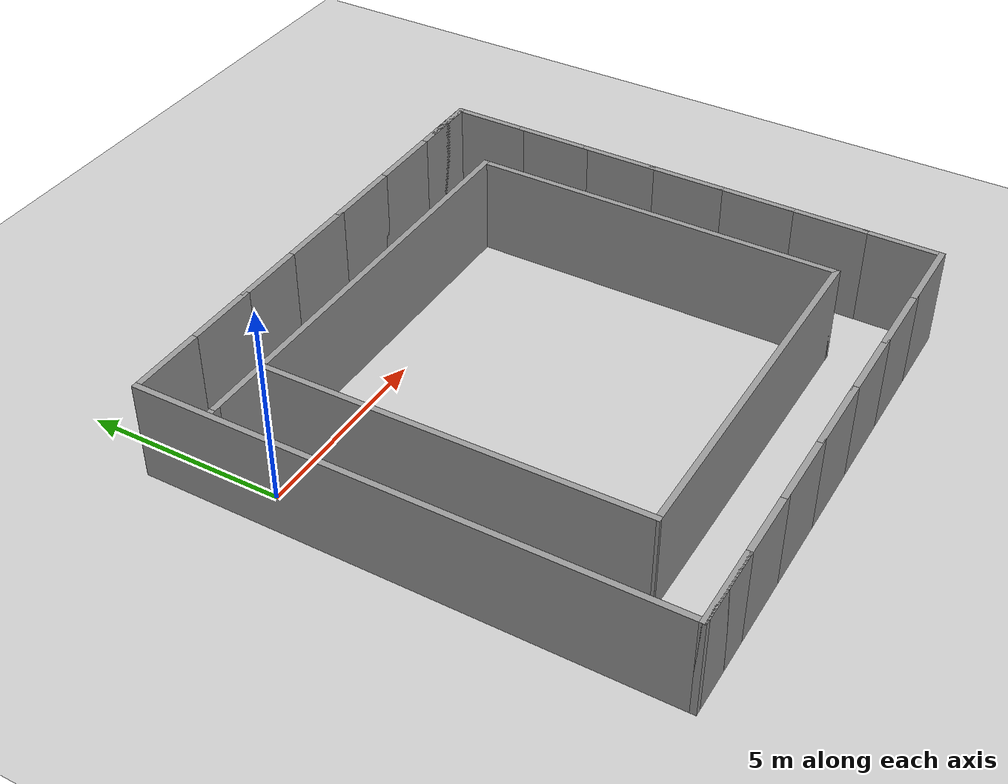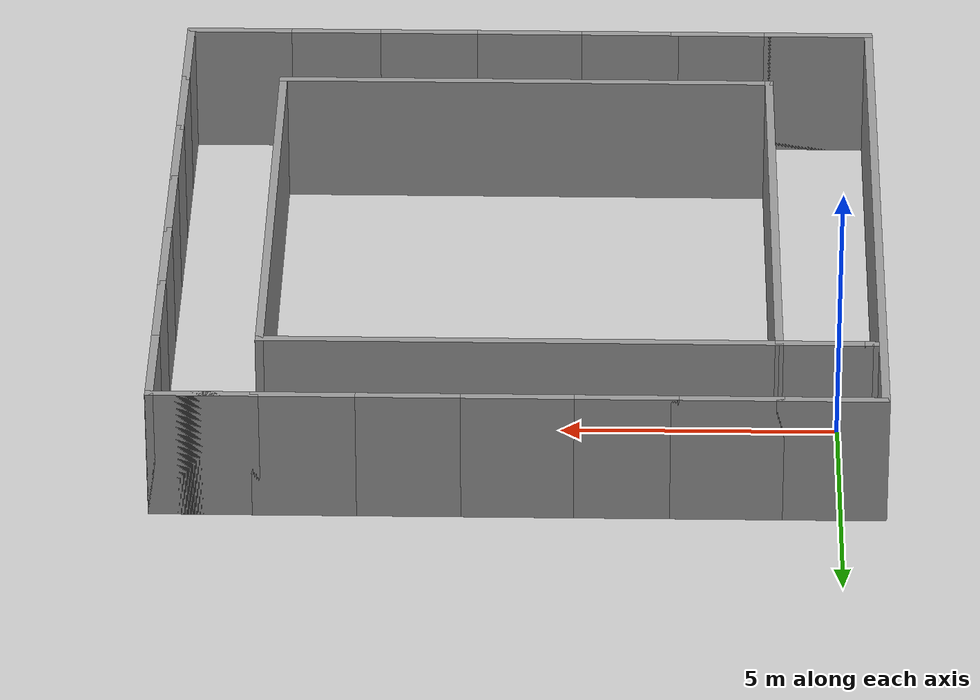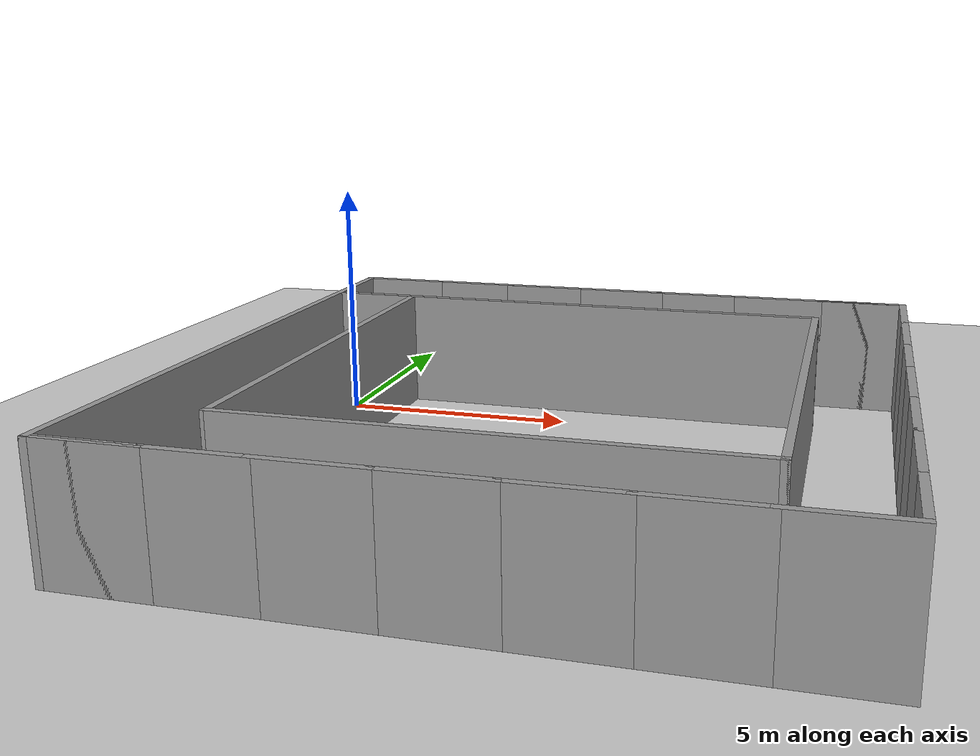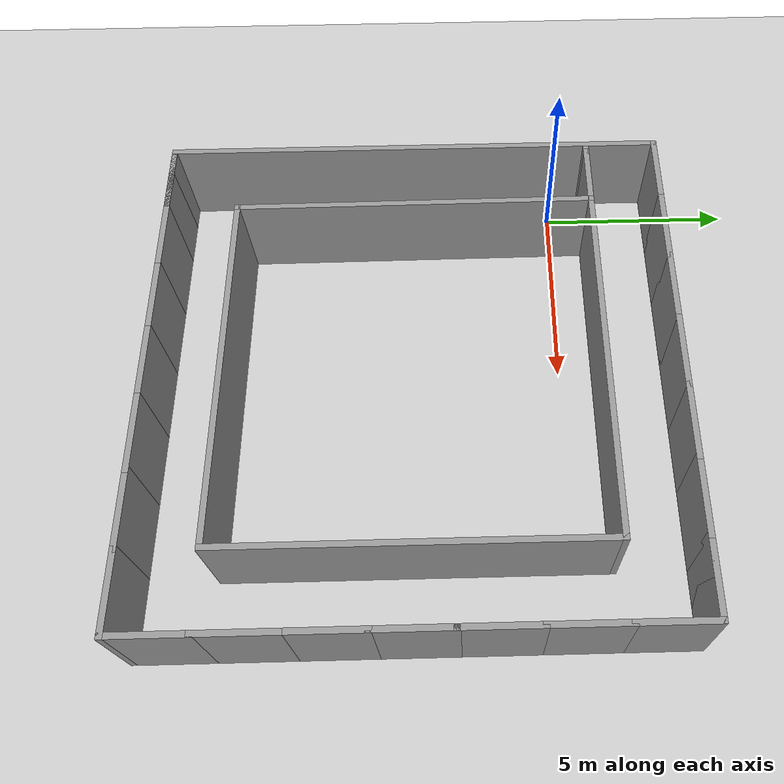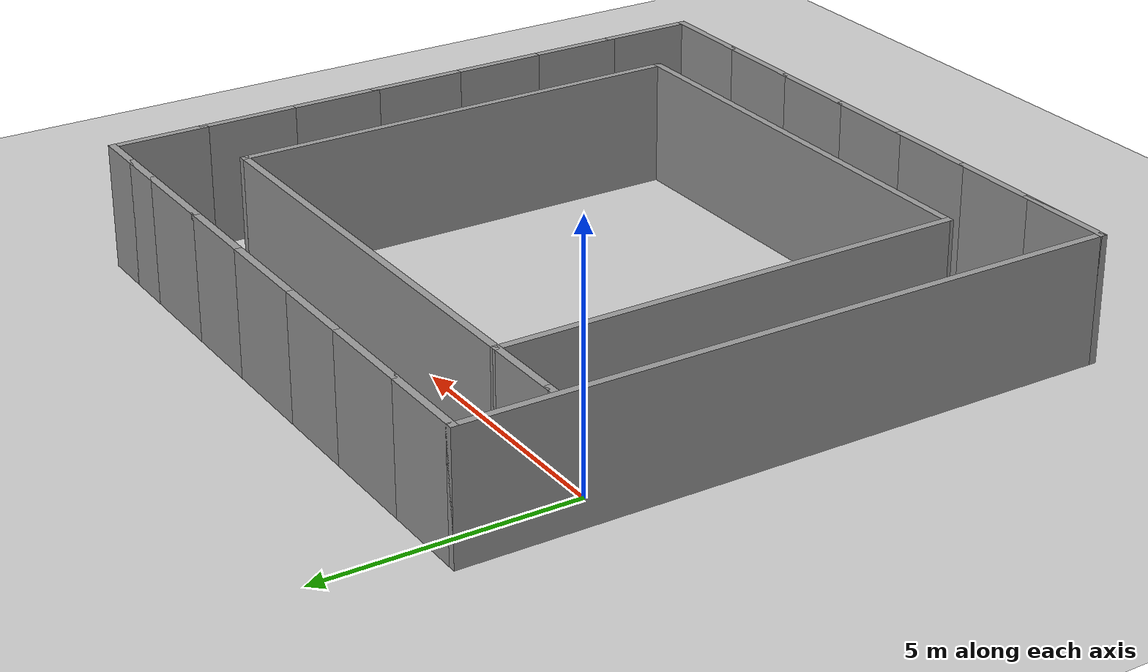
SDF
<sdf version="1.6">
 <world name="default">
  <light name="sun" type="directional">
   <pose>0 0 10 0 -0 0</pose>
   <diffuse>0.8 0.8 0.8 1</diffuse>
   <specular>0.1 0.1 0.1 1</specular>
   <attenuation>
    <range>1000</range>
    <constant>0.9</constant>
    <linear>0.01</linear>
    <quadratic>0.001</quadratic>
   </attenuation>
   <direction>-0.5 0.5 -1</direction>
  </light>
  <model name="ground_plane">
   <static>1</static>
   <link name="link">
    <collision name="collision">
     <geometry><plane><normal>0 0 1</normal><size>100 100</size></plane></geometry>
     <surface><friction><ode><mu>100</mu><mu2>50</mu2></ode></friction></surface>
    </collision>
    <visual name="visual">
     <cast_shadows>0</cast_shadows>
     <geometry><plane><normal>0 0 1</normal><size>100 100</size></plane></geometry>
     <material>
      <script><uri>file://media/materials/scripts/gazebo.material</uri><name>Gazebo/Grey</name></script>
     </material>
    </visual>
   </link>
  </model>
  <gravity>0 0 -9.8</gravity>
  <magnetic_field>6e-06 2.3e-05 -4.2e-05</magnetic_field>
  <atmosphere type="adiabatic"/>
  <physics name="default_physics" default="0" type="ode">
   <max_step_size>0.001</max_step_size>
   <real_time_factor>1</real_time_factor>
   <real_time_update_rate>1000</real_time_update_rate>
  </physics>
  <scene><ambient>0.4 0.4 0.4 1</ambient><background>0.7 0.7 0.7 1</background><shadows>1</shadows></scene>
  <spherical_coordinates>
   <surface_model>EARTH_WGS84</surface_model>
   <latitude_deg>0</latitude_deg>
   <longitude_deg>0</longitude_deg>
   <elevation>0</elevation>
   <heading_deg>0</heading_deg>
  </spherical_coordinates>
  <model name="sq_wall2">
   <pose>5.73319 -3.68571 0 0 -0 0</pose>
   <link name="Wall_0">
    <collision name="Wall_0_Collision">
     <geometry><box><size>2 0.15 2.5</size></box></geometry>
     <pose>0 0 1.25 0 -0 0</pose>
    </collision>
    <visual name="Wall_0_Visual">
     <pose>0 0 1.25 0 -0 0</pose>
     <geometry><box><size>2 0.15 2.5</size></box></geometry>
     <material>
      <script><uri>file://media/materials/scripts/gazebo.material</uri><name>Gazebo/Grey</name></script>
      <ambient>1 1 1 1</ambient>
     </material>
    </visual>
    <pose>-5.55 6.475 0 0 -0 0</pose>
   </link>
   <link name="Wall_1">
    <collision name="Wall_1_Collision">
     <geometry><box><size>2 0.15 2.5</size></box></geometry>
     <pose>0 0 1.25 0 -0 0</pose>
    </collision>
    <visual name="Wall_1_Visual">
     <pose>0 0 1.25 0 -0 0</pose>
     <geometry><box><size>2 0.15 2.5</size></box></geometry>
     <material>
      <script><uri>file://media/materials/scripts/gazebo.material</uri><name>Gazebo/Grey</name></script>
      <ambient>1 1 1 1</ambient>
     </material>
    </visual>
    <pose>-3.7 6.475 0 0 -0 0</pose>
   </link>
   <link name="Wall_10">
    <collision name="Wall_10_Collision">
     <geometry><box><size>2 0.15 2.5</size></box></geometry>
     <pose>0 0 1.25 0 -0 0</pose>
    </collision>
    <visual name="Wall_10_Visual">
     <pose>0 0 1.25 0 -0 0</pose>
     <geometry><box><size>2 0.15 2.5</size></box></geometry>
     <material>
      <script><uri>file://media/materials/scripts/gazebo.material</uri><name>Gazebo/Grey</name></script>
      <ambient>1 1 1 1</ambient>
     </material>
    </visual>
    <pose>6.475 0 0 0 0 -1.5708</pose>
   </link>
   <link name="Wall_13">
    <collision name="Wall_13_Collision">
     <geometry><box><size>2 0.15 2.5</size></box></geometry>
     <pose>0 0 1.25 0 -0 0</pose>
    </collision>
    <visual name="Wall_13_Visual">
     <pose>0 0 1.25 0 -0 0</pose>
     <geometry><box><size>2 0.15 2.5</size></box></geometry>
     <material>
      <script><uri>file://media/materials/scripts/gazebo.material</uri><name>Gazebo/Grey</name></script>
      <ambient>1 1 1 1</ambient>
     </material>
    </visual>
    <pose>6.475 -1.85 0 0 0 -1.5708</pose>
   </link>
   <link name="Wall_14">
    <collision name="Wall_14_Collision">
     <geometry><box><size>2 0.15 2.5</size></box></geometry>
     <pose>0 0 1.25 0 -0 0</pose>
    </collision>
    <visual name="Wall_14_Visual">
     <pose>0 0 1.25 0 -0 0</pose>
     <geometry><box><size>2 0.15 2.5</size></box></geometry>
     <material>
      <script><uri>file://media/materials/scripts/gazebo.material</uri><name>Gazebo/Grey</name></script>
      <ambient>1 1 1 1</ambient>
     </material>
    </visual>
    <pose>6.475 -3.7 0 0 0 -1.5708</pose>
   </link>
   <link name="Wall_15">
    <collision name="Wall_15_Collision">
     <geometry><box><size>2 0.15 2.5</size></box></geometry>
     <pose>0 0 1.25 0 -0 0</pose>
    </collision>
    <visual name="Wall_15_Visual">
     <pose>0 0 1.25 0 -0 0</pose>
     <geometry><box><size>2 0.15 2.5</size></box></geometry>
     <material>
      <script><uri>file://media/materials/scripts/gazebo.material</uri><name>Gazebo/Grey</name></script>
      <ambient>1 1 1 1</ambient>
     </material>
    </visual>
    <pose>6.475 -5.55 0 0 0 -1.5708</pose>
   </link>
   <link name="Wall_16">
    <collision name="Wall_16_Collision">
     <geometry><box><size>2 0.15 2.5</size></box></geometry>
     <pose>0 0 1.25 0 -0 0</pose>
    </collision>
    <visual name="Wall_16_Visual">
     <pose>0 0 1.25 0 -0 0</pose>
     <geometry><box><size>2 0.15 2.5</size></box></geometry>
     <material>
      <script><uri>file://media/materials/scripts/gazebo.material</uri><name>Gazebo/Grey</name></script>
      <ambient>1 1 1 1</ambient>
     </material>
    </visual>
    <pose>5.55 -6.475 0 0 -0 3.14159</pose>
   </link>
   <link name="Wall_17">
    <collision name="Wall_17_Collision">
     <geometry><box><size>2 0.15 2.5</size></box></geometry>
     <pose>0 0 1.25 0 -0 0</pose>
    </collision>
    <visual name="Wall_17_Visual">
     <pose>0 0 1.25 0 -0 0</pose>
     <geometry><box><size>2 0.15 2.5</size></box></geometry>
     <material>
      <script><uri>file://media/materials/scripts/gazebo.material</uri><name>Gazebo/Grey</name></script>
      <ambient>1 1 1 1</ambient>
     </material>
    </visual>
    <pose>3.7 -6.475 0 0 -0 3.14159</pose>
   </link>
   <link name="Wall_18">
    <collision name="Wall_18_Collision">
     <geometry><box><size>2 0.15 2.5</size></box></geometry>
     <pose>0 0 1.25 0 -0 0</pose>
    </collision>
    <visual name="Wall_18_Visual">
     <pose>0 0 1.25 0 -0 0</pose>
     <geometry><box><size>2 0.15 2.5</size></box></geometry>
     <material>
      <script><uri>file://media/materials/scripts/gazebo.material</uri><name>Gazebo/Grey</name></script>
      <ambient>1 1 1 1</ambient>
     </material>
    </visual>
    <pose>1.85 -6.475 0 0 -0 3.14159</pose>
   </link>
   <link name="Wall_19">
    <collision name="Wall_19_Collision">
     <geometry><box><size>2 0.15 2.5</size></box></geometry>
     <pose>0 0 1.25 0 -0 0</pose>
    </collision>
    <visual name="Wall_19_Visual">
     <pose>0 0 1.25 0 -0 0</pose>
     <geometry><box><size>2 0.15 2.5</size></box></geometry>
     <material>
      <script><uri>file://media/materials/scripts/gazebo.material</uri><name>Gazebo/Grey</name></script>
      <ambient>1 1 1 1</ambient>
     </material>
    </visual>
    <pose>0 -6.475 0 0 -0 3.14159</pose>
   </link>
   <link name="Wall_2">
    <collision name="Wall_2_Collision">
     <geometry><box><size>2 0.15 2.5</size></box></geometry>
     <pose>0 0 1.25 0 -0 0</pose>
    </collision>
    <visual name="Wall_2_Visual">
     <pose>0 0 1.25 0 -0 0</pose>
     <geometry><box><size>2 0.15 2.5</size></box></geometry>
     <material>
      <script><uri>file://media/materials/scripts/gazebo.material</uri><name>Gazebo/Grey</name></script>
      <ambient>1 1 1 1</ambient>
     </material>
    </visual>
    <pose>-1.85 6.475 0 0 -0 0</pose>
   </link>
   <link name="Wall_20">
    <collision name="Wall_20_Collision">
     <geometry><box><size>2 0.15 2.5</size></box></geometry>
     <pose>0 0 1.25 0 -0 0</pose>
    </collision>
    <visual name="Wall_20_Visual">
     <pose>0 0 1.25 0 -0 0</pose>
     <geometry><box><size>2 0.15 2.5</size></box></geometry>
     <material>
      <script><uri>file://media/materials/scripts/gazebo.material</uri><name>Gazebo/Grey</name></script>
      <ambient>1 1 1 1</ambient>
     </material>
    </visual>
    <pose>-1.85 -6.475 0 0 -0 3.14159</pose>
   </link>
   <link name="Wall_21">
    <collision name="Wall_21_Collision">
     <geometry><box><size>1.93061 0.15 2.5</size></box></geometry>
     <pose>0 0 1.25 0 -0 0</pose>
    </collision>
    <visual name="Wall_21_Visual">
     <pose>0 0 1.25 0 -0 0</pose>
     <geometry><box><size>1.93061 0.15 2.5</size></box></geometry>
     <material>
      <script><uri>file://media/materials/scripts/gazebo.material</uri><name>Gazebo/Grey</name></script>
      <ambient>1 1 1 1</ambient>
     </material>
    </visual>
    <pose>-3.6653 -6.475 0 0 -0 3.14159</pose>
   </link>
   <link name="Wall_22">
    <collision name="Wall_22_Collision">
     <geometry><box><size>2.06939 0.15 2.5</size></box></geometry>
     <pose>0 0 1.25 0 -0 0</pose>
    </collision>
    <visual name="Wall_22_Visual">
     <pose>0 0 1.25 0 -0 0</pose>
     <geometry><box><size>2.06939 0.15 2.5</size></box></geometry>
     <material>
      <script><uri>file://media/materials/scripts/gazebo.material</uri><name>Gazebo/Grey</name></script>
      <ambient>1 1 1 1</ambient>
     </material>
    </visual>
    <pose>-5.5153 -6.475 0 0 -0 3.14159</pose>
   </link>
   <link name="Wall_23">
    <collision name="Wall_23_Collision">
     <geometry><box><size>13.1 0.15 2.5</size></box></geometry>
     <pose>0 0 1.25 0 -0 0</pose>
    </collision>
    <visual name="Wall_23_Visual">
     <pose>0 0 1.25 0 -0 0</pose>
     <geometry><box><size>13.1 0.15 2.5</size></box></geometry>
     <material>
      <script><uri>file://media/materials/scripts/gazebo.material</uri><name>Gazebo/Grey</name></script>
      <ambient>1 1 1 1</ambient>
     </material>
    </visual>
    <pose>-6.475 0 0 0 -0 1.5708</pose>
   </link>
   <link name="Wall_25">
    <collision name="Wall_25_Collision">
     <geometry><box><size>2.06939 0.15 2.5</size></box></geometry>
     <pose>0 0 1.25 0 -0 0</pose>
    </collision>
    <visual name="Wall_25_Visual">
     <pose>0 0 1.25 0 -0 0</pose>
     <geometry><box><size>2.06939 0.15 2.5</size></box></geometry>
     <material>
      <script><uri>file://media/materials/scripts/gazebo.material</uri><name>Gazebo/Grey</name></script>
      <ambient>1 1 1 1</ambient>
     </material>
    </visual>
    <pose>-5.5153 -6.475 0 0 -0 0</pose>
   </link>
   <link name="Wall_29">
    <collision name="Wall_29_Collision">
     <geometry><box><size>2 0.15 2.5</size></box></geometry>
     <pose>0 0 1.25 0 -0 0</pose>
    </collision>
    <visual name="Wall_29_Visual">
     <pose>0 0 1.25 0 -0 0</pose>
     <geometry><box><size>2 0.15 2.5</size></box></geometry>
     <material>
      <script><uri>file://media/materials/scripts/gazebo.material</uri><name>Gazebo/Grey</name></script>
      <ambient>1 1 1 1</ambient>
     </material>
    </visual>
    <pose>5.55 -6.475 0 0 -0 3.14159</pose>
   </link>
   <link name="Wall_3">
    <collision name="Wall_3_Collision">
     <geometry><box><size>2 0.15 2.5</size></box></geometry>
     <pose>0 0 1.25 0 -0 0</pose>
    </collision>
    <visual name="Wall_3_Visual">
     <pose>0 0 1.25 0 -0 0</pose>
     <geometry><box><size>2 0.15 2.5</size></box></geometry>
     <material>
      <script><uri>file://media/materials/scripts/gazebo.material</uri><name>Gazebo/Grey</name></script>
      <ambient>1 1 1 1</ambient>
     </material>
    </visual>
    <pose>0 6.475 0 0 -0 0</pose>
   </link>
   <link name="Wall_34">
    <collision name="Wall_34_Collision">
     <geometry><box><size>2 0.15 2.5</size></box></geometry>
     <pose>0 0 1.25 0 -0 0</pose>
    </collision>
    <visual name="Wall_34_Visual">
     <pose>0 0 1.25 0 -0 0</pose>
     <geometry><box><size>2 0.15 2.5</size></box></geometry>
     <material>
      <script><uri>file://media/materials/scripts/gazebo.material</uri><name>Gazebo/Grey</name></script>
      <ambient>1 1 1 1</ambient>
     </material>
    </visual>
    <pose>-5.55 6.475 0 0 -0 0</pose>
   </link>
   <link name="Wall_38">
    <collision name="Wall_38_Collision">
     <geometry><box><size>2 0.15 2.5</size></box></geometry>
     <pose>0 0 1.25 0 -0 0</pose>
    </collision>
    <visual name="Wall_38_Visual">
     <pose>0 0 1.25 0 -0 0</pose>
     <geometry><box><size>2 0.15 2.5</size></box></geometry>
     <material>
      <script><uri>file://media/materials/scripts/gazebo.material</uri><name>Gazebo/Grey</name></script>
      <ambient>1 1 1 1</ambient>
     </material>
    </visual>
    <pose>5.55 6.475 0 0 -0 3.14159</pose>
   </link>
   <link name="Wall_4">
    <collision name="Wall_4_Collision">
     <geometry><box><size>2 0.15 2.5</size></box></geometry>
     <pose>0 0 1.25 0 -0 0</pose>
    </collision>
    <visual name="Wall_4_Visual">
     <pose>0 0 1.25 0 -0 0</pose>
     <geometry><box><size>2 0.15 2.5</size></box></geometry>
     <material>
      <script><uri>file://media/materials/scripts/gazebo.material</uri><name>Gazebo/Grey</name></script>
      <ambient>1 1 1 1</ambient>
     </material>
    </visual>
    <pose>1.85 6.475 0 0 -0 0</pose>
   </link>
   <link name="Wall_43">
    <collision name="Wall_43_Collision">
     <geometry><box><size>9.33061 0.15 2.5</size></box></geometry>
     <pose>0 0 1.25 0 -0 0</pose>
    </collision>
    <visual name="Wall_43_Visual">
     <pose>0 0 1.25 0 -0 0</pose>
     <geometry><box><size>9.33061 0.15 2.5</size></box></geometry>
     <material>
      <script><uri>file://media/materials/scripts/gazebo.material</uri><name>Gazebo/Grey</name></script>
      <ambient>1 1 1 1</ambient>
     </material>
    </visual>
    <pose>0.034696 -4.625 0 0 -0 0</pose>
   </link>
   <link name="Wall_44">
    <collision name="Wall_44_Collision">
     <geometry><box><size>9.4 0.15 2.5</size></box></geometry>
     <pose>0 0 1.25 0 -0 0</pose>
    </collision>
    <visual name="Wall_44_Visual">
     <pose>0 0 1.25 0 -0 0</pose>
     <geometry><box><size>9.4 0.15 2.5</size></box></geometry>
     <material>
      <script><uri>file://media/materials/scripts/gazebo.material</uri><name>Gazebo/Grey</name></script>
      <ambient>1 1 1 1</ambient>
     </material>
    </visual>
    <pose>4.625 0 0 0 -0 1.5708</pose>
   </link>
   <link name="Wall_45">
    <collision name="Wall_45_Collision">
     <geometry><box><size>9.4 0.15 2.5</size></box></geometry>
     <pose>0 0 1.25 0 -0 0</pose>
    </collision>
    <visual name="Wall_45_Visual">
     <pose>0 0 1.25 0 -0 0</pose>
     <geometry><box><size>9.4 0.15 2.5</size></box></geometry>
     <material>
      <script><uri>file://media/materials/scripts/gazebo.material</uri><name>Gazebo/Grey</name></script>
      <ambient>1 1 1 1</ambient>
     </material>
    </visual>
    <pose>0 4.625 0 0 -0 3.14159</pose>
   </link>
   <link name="Wall_48">
    <collision name="Wall_48_Collision">
     <geometry><box><size>9.40026 0.15 2.5</size></box></geometry>
     <pose>0 0 1.25 0 -0 0</pose>
    </collision>
    <visual name="Wall_48_Visual">
     <pose>0 0 1.25 0 -0 0</pose>
     <geometry><box><size>9.40026 0.15 2.5</size></box></geometry>
     <material>
      <script><uri>file://media/materials/scripts/gazebo.material</uri><name>Gazebo/Grey</name></script>
      <ambient>1 1 1 1</ambient>
     </material>
    </visual>
    <pose>-4.5903 0 0 0 -0 1.5783</pose>
   </link>
   <link name="Wall_5">
    <collision name="Wall_5_Collision">
     <geometry><box><size>2 0.15 2.5</size></box></geometry>
     <pose>0 0 1.25 0 -0 0</pose>
    </collision>
    <visual name="Wall_5_Visual">
     <pose>0 0 1.25 0 -0 0</pose>
     <geometry><box><size>2 0.15 2.5</size></box></geometry>
     <material>
      <script><uri>file://media/materials/scripts/gazebo.material</uri><name>Gazebo/Grey</name></script>
      <ambient>1 1 1 1</ambient>
     </material>
    </visual>
    <pose>3.7 6.475 0 0 -0 0</pose>
   </link>
   <link name="Wall_50">
    <collision name="Wall_50_Collision">
     <geometry><box><size>1.75 0.15 2.5</size></box></geometry>
     <pose>0 0 1.25 0 -0 0</pose>
    </collision>
    <visual name="Wall_50_Visual">
     <pose>0 0 1.25 0 -0 0</pose>
     <geometry><box><size>1.75 0.15 2.5</size></box></geometry>
     <material>
      <script><uri>file://media/materials/scripts/gazebo.material</uri><name>Gazebo/Grey</name></script>
      <ambient>1 1 1 1</ambient>
     </material>
    </visual>
    <pose>-5.425 4.625 0 0 -0 3.14159</pose>
   </link>
   <link name="Wall_51">
    <collision name="Wall_51_Collision">
     <geometry><box><size>0.25 0.15 2.5</size></box></geometry>
     <pose>0 0 1.25 0 -0 0</pose>
    </collision>
    <visual name="Wall_51_Visual">
     <pose>0 0 1.25 0 -0 0</pose>
     <geometry><box><size>0.25 0.15 2.5</size></box></geometry>
     <material>
      <script><uri>file://media/materials/scripts/gazebo.material</uri><name>Gazebo/Grey</name></script>
      <ambient>1 1 1 1</ambient>
     </material>
    </visual>
    <pose>-6.275 4.625 0 0 -0 3.14159</pose>
   </link>
   <link name="Wall_6">
    <collision name="Wall_6_Collision">
     <geometry><box><size>2 0.15 2.5</size></box></geometry>
     <pose>0 0 1.25 0 -0 0</pose>
    </collision>
    <visual name="Wall_6_Visual">
     <pose>0 0 1.25 0 -0 0</pose>
     <geometry><box><size>2 0.15 2.5</size></box></geometry>
     <material>
      <script><uri>file://media/materials/scripts/gazebo.material</uri><name>Gazebo/Grey</name></script>
      <ambient>1 1 1 1</ambient>
     </material>
    </visual>
    <pose>5.55 6.475 0 0 -0 0</pose>
   </link>
   <link name="Wall_7">
    <collision name="Wall_7_Collision">
     <geometry><box><size>2 0.15 2.5</size></box></geometry>
     <pose>0 0 1.25 0 -0 0</pose>
    </collision>
    <visual name="Wall_7_Visual">
     <pose>0 0 1.25 0 -0 0</pose>
     <geometry><box><size>2 0.15 2.5</size></box></geometry>
     <material>
      <script><uri>file://media/materials/scripts/gazebo.material</uri><name>Gazebo/Grey</name></script>
      <ambient>1 1 1 1</ambient>
     </material>
    </visual>
    <pose>6.475 5.55 0 0 0 -1.5708</pose>
   </link>
   <link name="Wall_8">
    <collision name="Wall_8_Collision">
     <geometry><box><size>2 0.15 2.5</size></box></geometry>
     <pose>0 0 1.25 0 -0 0</pose>
    </collision>
    <visual name="Wall_8_Visual">
     <pose>0 0 1.25 0 -0 0</pose>
     <geometry><box><size>2 0.15 2.5</size></box></geometry>
     <material>
      <script><uri>file://media/materials/scripts/gazebo.material</uri><name>Gazebo/Grey</name></script>
      <ambient>1 1 1 1</ambient>
     </material>
    </visual>
    <pose>6.475 3.7 0 0 0 -1.5708</pose>
   </link>
   <link name="Wall_9">
    <collision name="Wall_9_Collision">
     <geometry><box><size>2 0.15 2.5</size></box></geometry>
     <pose>0 0 1.25 0 -0 0</pose>
    </collision>
    <visual name="Wall_9_Visual">
     <pose>0 0 1.25 0 -0 0</pose>
     <geometry><box><size>2 0.15 2.5</size></box></geometry>
     <material>
      <script><uri>file://media/materials/scripts/gazebo.material</uri><name>Gazebo/Grey</name></script>
      <ambient>1 1 1 1</ambient>
     </material>
    </visual>
    <pose>6.475 1.85 0 0 0 -1.5708</pose>
   </link>
   <static>1</static>
  </model>
 </world>
</sdf>
